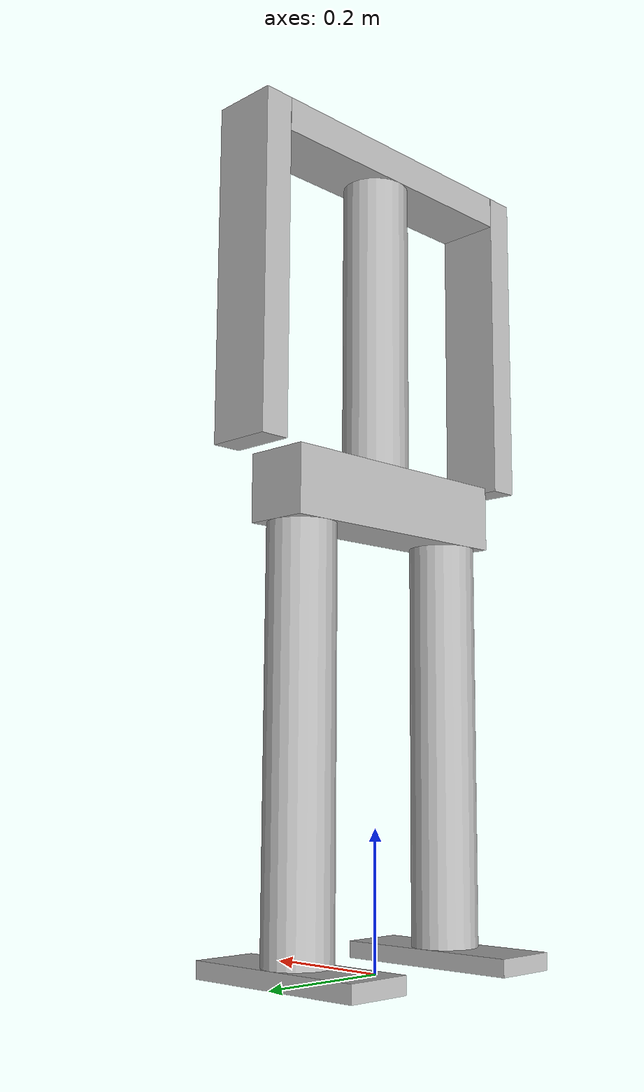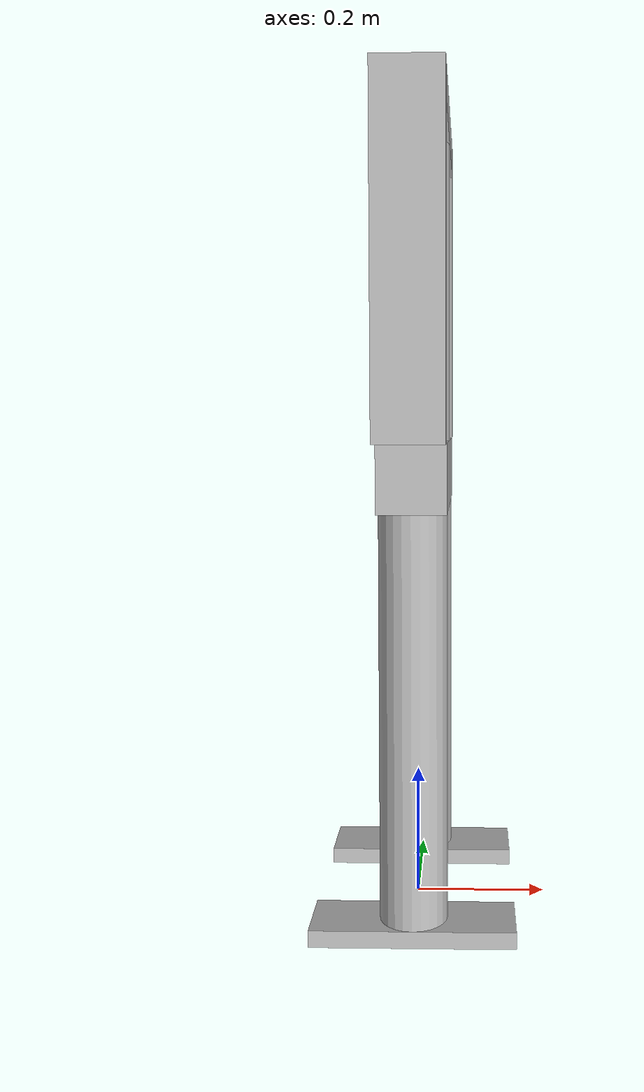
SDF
<?xml version="1.0"?>
<sdf version="1.4">
    <model name="walker_10">

        <link name="right_arm_link">
            <pose>0 -0.2478 0.975 0 0 1.57075</pose>
            <inertial>
                <pose>0 -0.2478 1.15 0 0 1.57075</pose>
                <inertia>
                    <ixx>0.3050</ixx>
                    <ixy>0</ixy>
                    <ixz>0</ixz>
                    <iyy>0.3050</iyy>
                    <iyz>0</iyz>
                    <izz>0.0125</izz>
                </inertia>
                <mass>5.0</mass>
            </inertial>
            <collision name="collision">
                <geometry>
                    <box>
                        <size>0.045 0.1 0.5</size>
                    </box>
                </geometry>
            </collision>
            <visual name="visual">
                <geometry>
                    <box>
                        <size>0.045 0.1 0.5</size>
                    </box>
                </geometry>
                <material>
                    <script>Gazebo/Purple</script>
                </material>
            </visual>
        </link>

        <link name="left_arm_link">
            <pose>0 0.2478 0.975 0 0 1.57075</pose>
            <inertial>
                <pose>0 0.2478 1.15 0 0 1.57075</pose>
                <inertia>
                    <ixx>0.3050</ixx>
                    <ixy>0</ixy>
                    <ixz>0</ixz>
                    <iyy>0.3050</iyy>
                    <iyz>0</iyz>
                    <izz>0.0125</izz>
                </inertia>
                <mass>5.0</mass>
            </inertial>

            <collision name="collision">
                <geometry>
                    <box>
                        <size>0.045 0.1 0.5</size>
                    </box>
                </geometry>
            </collision>

            <visual name="visual">
                <geometry>
                    <box>
                        <size>0.045 0.1 0.5</size>
                    </box>
                </geometry>
                <material>
                    <script>Gazebo/Purple</script>
                </material>
            </visual>
        </link>

        <link name="right_leg">
            <pose>0 -0.150 0.325 0 0 1.57075</pose>
            <inertial>
                <pose>0 -0.150 0.6 0 0 1.57075</pose>
                <inertia>
                    <ixx>0.3050</ixx>
                    <ixy>0</ixy>
                    <ixz>0</ixz>
                    <iyy>0.3050</iyy>
                    <iyz>0</iyz>
                    <izz>0.0125</izz>
                </inertia>
                <mass>10.0</mass>
            </inertial>
            <collision name="collision">
                <geometry>
                    <cylinder>
                        <radius>0.05</radius>
                        <length>0.6</length>
                    </cylinder>
                </geometry>
            </collision>
            <visual name="visual">
                <geometry>
                    <cylinder>
                        <radius>0.05</radius>
                        <length>0.6</length>
                    </cylinder>
                </geometry>
                <material>
                    <script>Gazebo/Purple</script>
                </material>
            </visual>
        </link>
        <link name="right_foot">
            <pose>0.0 -0.150 0.0125 1.57075 0 0</pose>
            <inertial>
                <inertia>
                    <ixx>0.01</ixx>
                    <ixy>0</ixy>
                    <ixz>0</ixz>
                    <iyy>0.01</iyy>
                    <iyz>0</iyz>
                    <izz>0.01</izz>
                </inertia>
                <mass>0.5</mass>
            </inertial>
            <collision name="collision">
                <geometry>
                    <box>
                        <size>0.3 0.025 0.1</size>
                    </box>
                </geometry>
            </collision>
            <visual name="visual">
                <geometry>
                    <box>
                        <size>0.3 0.025 0.1</size>
                    </box>
                </geometry>
                <material>
                    <script>Gazebo/Red</script>
                </material>
            </visual>
        </link>

        <joint name="right_foot_joint" type="fixed">
          <parent>right_leg</parent>
          <child>right_foot</child>
        </joint>

        <joint name="right_leg_base_link_joint" type="fixed">
          <parent>base_link</parent>
          <child>right_leg</child>
        </joint>

        <link name="base_link">
            <pose>0.0 0.0 0.675 1.57075 0 1.57075</pose>
            <inertial>
                <pose>0.0 0.0 0.675 1.57075 0 1.57075</pose>
                <inertia>
                    <ixx>0.01</ixx>
                    <ixy>0</ixy>
                    <ixz>0</ixz>
                    <iyy>0.01</iyy>
                    <iyz>0</iyz>
                    <izz>0.01</izz>
                </inertia>
                <mass>0.5</mass>
            </inertial>
            <collision name="collision">
                <geometry>
                    <box>
                        <size>0.4 0.1 0.1</size>
                    </box>
                </geometry>
            </collision>
            <visual name="visual">
                <geometry>
                    <box>
                        <size>0.4 0.1 0.1</size>
                    </box>
                </geometry>
                <material>
                    <script>Gazebo/Red</script>
                </material>
            </visual>
        </link>

        <joint name="base_torso_joint" type="revolute">
          <parent>base_link</parent>
          <child>torso_link</child>
          <axis>
            <dynamics>
              <damping>1.000000</damping>
              <friction>0.000000</friction>
            </dynamics>
            <xyz>0 0 1</xyz>
            <use_parent_model_frame>true</use_parent_model_frame>
          </axis>
        </joint>

        <link name="torso_link">
            <pose>0 0.0 0.95 0 0 1.57075</pose>
            <inertial>
                <pose>0 0.0 0.95 0 0 1.57075</pose>
                <inertia>
                    <ixx>0.3050</ixx>
                    <ixy>0</ixy>
                    <ixz>0</ixz>
                    <iyy>0.3050</iyy>
                    <iyz>0</iyz>
                    <izz>0.0125</izz>
                </inertia>
                <mass>7.0</mass>
            </inertial>
            <collision name="collision">
                <geometry>
                    <cylinder>
                        <radius>0.05</radius>
                        <length>0.45</length>
                    </cylinder>
                </geometry>
            </collision>
            <visual name="visual">
                <geometry>
                    <cylinder>
                        <radius>0.05</radius>
                        <length>0.45</length>
                    </cylinder>
                </geometry>
                <material>
                    <script>Gazebo/Purple</script>
                </material>
            </visual>
        </link>
        <link name="shoulders_link">
            <pose>0.0 0.0 1.2 1.57075 0 1.57075</pose>
            <inertial>
                <pose>0.0 0.0 1.2 1.57075 0 1.57075</pose>
                <inertia>
                    <ixx>0.01</ixx>
                    <ixy>0</ixy>
                    <ixz>0</ixz>
                    <iyy>0.01</iyy>
                    <iyz>0</iyz>
                    <izz>0.01</izz>
                </inertia>
                <mass>0.5</mass>
            </inertial>
            <collision name="collision">
                <geometry>
                    <box>
                        <size>0.45 0.05 0.1</size>
                    </box>
                </geometry>
            </collision>
            <visual name="visual">
                <geometry>
                    <box>
                        <size>0.45 0.05 0.1</size>
                    </box>
                </geometry>
                <material>
                    <script>Gazebo/Red</script>
                </material>
            </visual>
        </link>

        <joint name="shoulders_link_torso_joint" type="fixed">
          <parent>torso_link</parent>
          <child>shoulders_link</child>
        </joint>

        <joint name="right_shoulders_joint" type="fixed">
          <parent>shoulders_link</parent>
          <child>right_arm_link</child>
        </joint>

        <joint name="left_shoulders_joint" type="fixed">
          <parent>shoulders_link</parent>
          <child>left_arm_link</child>
        </joint>

        <link name="left_leg">
            <pose>0 0.150 0.325 0 0 1.57075</pose>
            <inertial>
                <pose>0 0.150 0.6 0 0 1.57075</pose>
                <inertia>
                    <ixx>0.3050</ixx>
                    <ixy>0</ixy>
                    <ixz>0</ixz>
                    <iyy>0.3050</iyy>
                    <iyz>0</iyz>
                    <izz>0.0125</izz>
                </inertia>
                <mass>10.0</mass>
            </inertial>
            <collision name="collision">
                <geometry>
                    <cylinder>
                        <radius>0.05</radius>
                        <length>0.6</length>
                    </cylinder>
                </geometry>
            </collision>
            <visual name="visual">
                <geometry>
                    <cylinder>
                        <radius>0.05</radius>
                        <length>0.6</length>
                    </cylinder>
                </geometry>
                <material>
                    <script>Gazebo/Purple</script>
                </material>
            </visual>
        </link>
        <link name="left_foot">
            <pose>0.0 0.150 0.0125 1.57075 0 0</pose>
            <inertial>
                <inertia>
                    <ixx>0.01</ixx>
                    <ixy>0</ixy>
                    <ixz>0</ixz>
                    <iyy>0.01</iyy>
                    <iyz>0</iyz>
                    <izz>0.01</izz>
                </inertia>
                <mass>0.5</mass>
            </inertial>
            <collision name="collision">
                <geometry>
                    <box>
                        <size>0.3 0.025 0.1</size>
                    </box>
                </geometry>
            </collision>
            <visual name="visual">
                <geometry>
                    <box>
                        <size>0.3 0.025 0.1</size>
                    </box>
                </geometry>
                <material>
                    <script>Gazebo/Red</script>
                </material>
            </visual>
        </link>

        <joint name="left_foot_joint" type="fixed">
          <parent>left_leg</parent>
          <child>left_foot</child>
        </joint>

        <joint name="left_leg_base_link_joint" type="fixed">
          <parent>base_link</parent>
          <child>left_leg</child>
        </joint>

       <joint name="world_joint" type="revolute">
         <parent>world</parent>
         <child>right_foot</child>
         <axis>
           <limit>
             <lower>0</lower>
             <upper>0</upper>
           </limit>
           <xyz>0 0 1</xyz>
         </axis>
       </joint>

        <static>true</static>
    </model>
</sdf>
